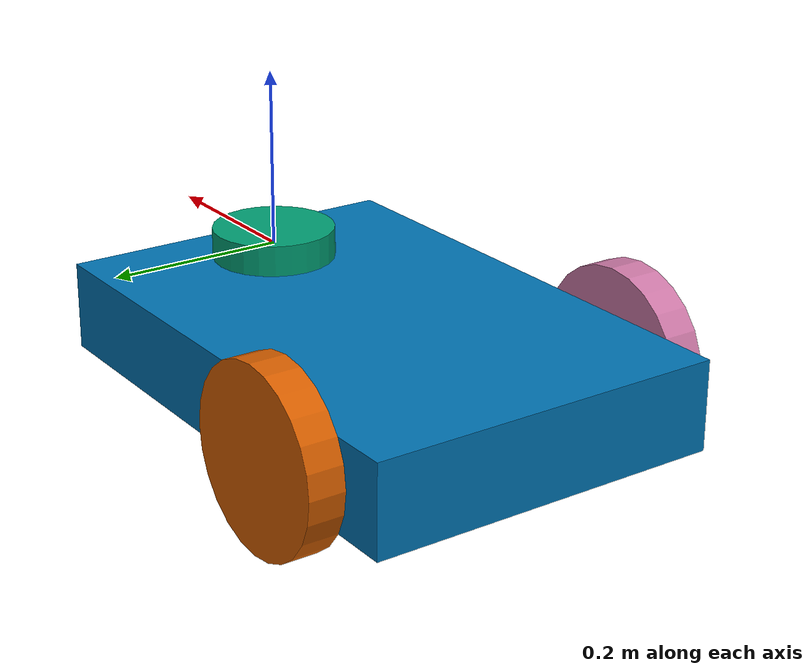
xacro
<?xml version="1.0"?>
<robot xmlns:xacro="http://www.ros.org/wiki/xacro" name="roomba">

    <xacro:include filename="inertial_macros.xacro"/>

    <link name="base_link"></link>
    <link name="base_footprint"></link>

    <link name="roomba/lidar/gpu_lidar">
        <visual>
            <geometry>
                <cylinder length="0.04" radius="0.07" />
            </geometry>
            <origin rpy="0 0 0" xyz="0 0 0"/>
        </visual>
        <collision>
            <geometry>
                <cylinder length="0.04" radius="0.07" />
            </geometry>
        </collision>
        <xacro:inertial_cylinder mass="1" length="0.04" radius="0.07">
            <origin xyz="0 0 0" rpy="0 0 0"/>
        </xacro:inertial_cylinder>
    </link>

    <link name="roomba/lidar/camera"></link>

    <link name="chassis">
        <visual>
            <geometry>
                <box size="0.6 0.4 0.1"/>
            </geometry>
            <origin rpy="0 0 0" xyz="-0.2 0 -0.065"/>
        </visual>
        <collision>
            <geometry>
                <box size="0.6 0.4 0.1"/>
            </geometry>
        </collision>
        <xacro:inertial_box mass="30" x="0.6" y="0.4" z="0.1">
            <origin xyz="0 0 0" rpy="0 0 0"/>
        </xacro:inertial_box>
    </link>

    <link name="left_wheel">
        <visual>
            <geometry>
                <cylinder radius="0.1" length="0.04"/>
            </geometry>
        </visual>
        <collision>
            <geometry>
                <cylinder radius="0.1" length="0.04"/>
            </geometry>
        </collision>
        <xacro:inertial_cylinder mass="1" length="0.04" radius="0.1">
            <origin xyz="0 0 0" rpy="0 0 0"/>
        </xacro:inertial_cylinder>
    </link>

    <link name="right_wheel">
        <visual>
            <geometry>
                <cylinder radius="0.1" length="0.04"/>
            </geometry>
        </visual>
        <collision>
            <geometry>
                <cylinder radius="0.1" length="0.04"/>
            </geometry>
        </collision>
        <xacro:inertial_cylinder mass="1" length="0.04" radius="0.1">
            <origin xyz="0 0 0" rpy="0 0 0"/>
        </xacro:inertial_cylinder>
    </link>

    <link name="caster_wheel">
        <visual>
            <geometry>
                <sphere radius="0.05"/>
            </geometry>
            <origin rpy="0 0 0" xyz="0 0 -0.115"/>
        </visual>
        <collision>
            <geometry>
                <sphere radius="0.05"/>
            </geometry>
        </collision>
        <xacro:inertial_sphere mass="1" radius="0.05">
            <origin xyz="0 0 0" rpy="0 0 0"/>
        </xacro:inertial_sphere>
    </link>

    <joint name="base_joint" type="fixed">
        <parent link="base_link"/>
        <child link="base_footprint"/>
    </joint>

    <joint name="base_joint" type="fixed">
        <parent link="base_link"/>
        <child link="roomba/lidar/gpu_lidar"/>
    </joint>

    <joint name="lidar_joint" type="fixed">
        <parent link="roomba/lidar/gpu_lidar"/>
        <child link="chassis"/>
        <origin xyz="0 0 0"/>
    </joint>

    <joint name="camera_joint" type="fixed">
        <parent link="roomba/lidar/gpu_lidar"/>
        <child link="roomba/lidar/camera"/>
        <origin xyz="0 0 0"/>
    </joint>

    <joint name="left_wheel_joint" type="continuous">
        <parent link="chassis"/>
        <child link="left_wheel"/>
        <origin xyz="-0.35 0.22 -0.065" rpy="-1.5707 0 0"/>
        <axis xyz="0 0 1"/>
    </joint>

    <joint name="right_wheel_joint" type="continuous">
        <parent link="chassis"/>
        <child link="right_wheel"/>
        <origin xyz="-0.35 -0.22 -0.065" rpy="1.5707 0 0"/>
        <axis xyz="0 0 -1"/>
    </joint>

    <joint name="caster_wheel_joint" type="fixed">
        <parent link="chassis"/>
        <child link="caster_wheel"/>
    </joint>

</robot>
